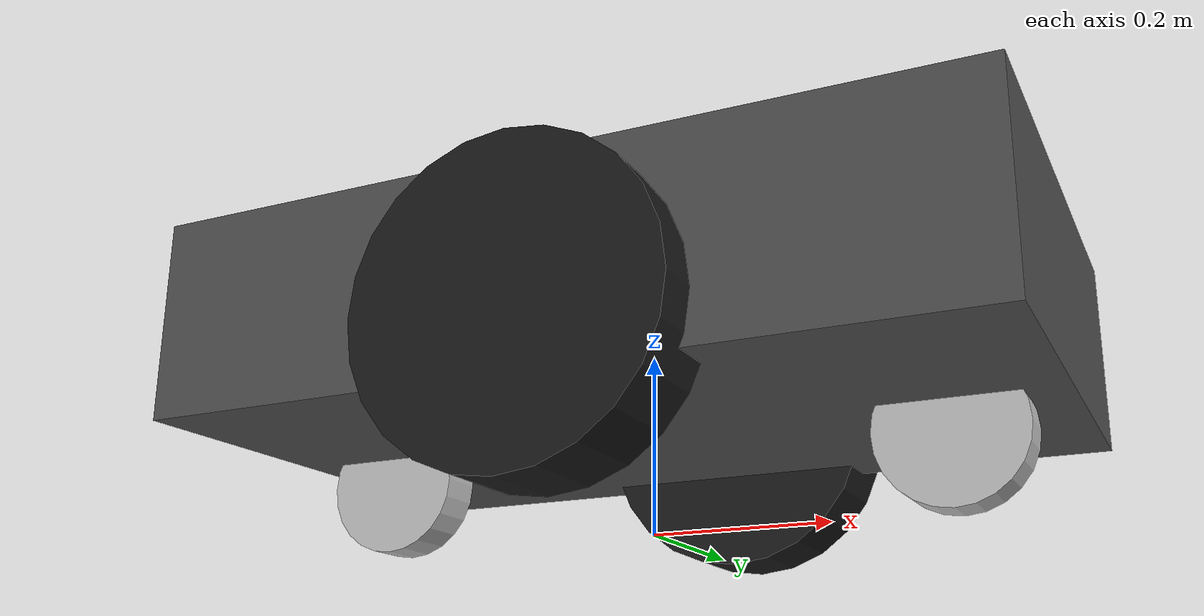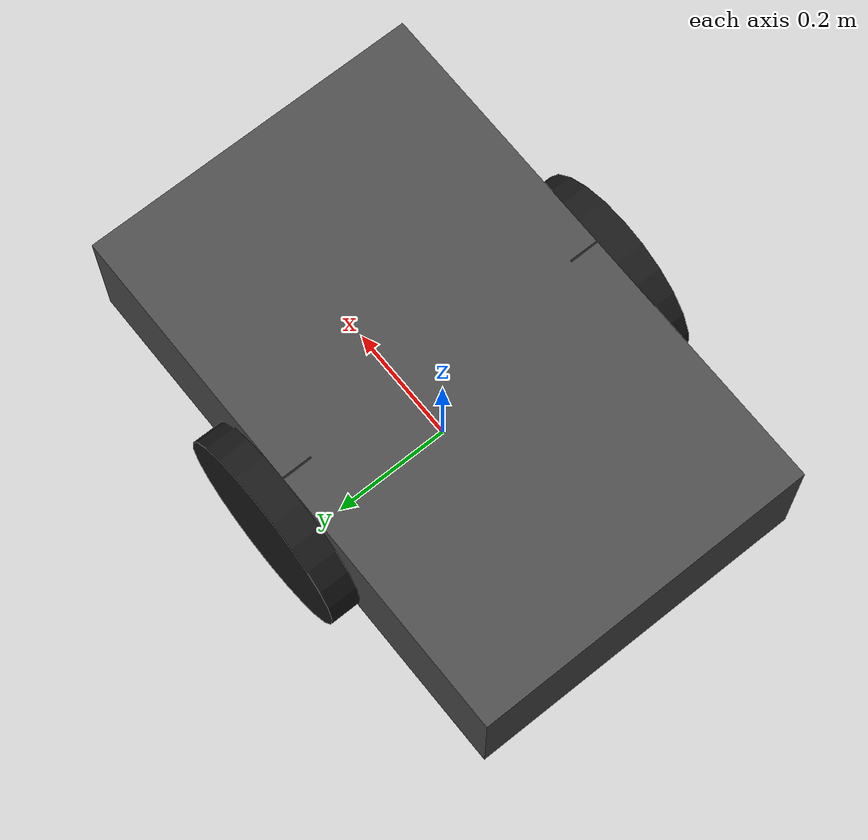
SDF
<?xml version="1.0"?>
<sdf version="1.9">
  <model name="X1_Tuned">
    <static>false</static>
    <self_collide>false</self_collide>
    <allow_auto_disable>false</allow_auto_disable>

    <link name="base_link">
      <pose>0 0 0.22 0 0 0</pose>
      <inertial>
        <mass>32.0</mass>
        <inertia>
          <ixx>1.10</ixx>
          <iyy>2.05</iyy>
          <izz>2.35</izz>
          <ixy>0.0</ixy>
          <ixz>0.0</ixz>
          <iyz>0.0</iyz>
        </inertia>
      </inertial>

      <collision name="base_collision">
        <pose>0 0 0 0 0 0</pose>
        <geometry>
          <box>
            <size>0.90 0.57 0.22</size>
          </box>
        </geometry>
      </collision>

      <visual name="base_visual">
        <pose>0 0 0 0 0 0</pose>
        <geometry>
          <box>
            <size>0.90 0.57 0.22</size>
          </box>
        </geometry>
        <material>
          <ambient>0.2 0.2 0.2 1</ambient>
          <diffuse>0.3 0.3 0.3 1</diffuse>
        </material>
      </visual>

      <sensor name="imu_sensor" type="imu">
        <always_on>1</always_on>
        <update_rate>100</update_rate>
        <frame_id>imu_link</frame_id>
      </sensor>

      <sensor name="gpu_lidar" type="gpu_lidar">
        <pose>0.35 0 0.18 0 0 0</pose>
        <always_on>1</always_on>
        <update_rate>20</update_rate>
        <frame_id>lidar_link</frame_id>
        <ray>
          <scan>
            <horizontal>
              <samples>720</samples>
              <resolution>1</resolution>
              <min_angle>-1.57</min_angle>
              <max_angle>1.57</max_angle>
            </horizontal>
            <vertical>
              <samples>1</samples>
              <resolution>1</resolution>
              <min_angle>0</min_angle>
              <max_angle>0</max_angle>
            </vertical>
          </scan>
          <range>
            <min>0.08</min>
            <max>15.0</max>
            <resolution>0.01</resolution>
          </range>
          <noise>
            <type>gaussian</type>
            <mean>0.0</mean>
            <stddev>0.01</stddev>
          </noise>
        </ray>
      </sensor>

      <sensor name="gpu_lidar_rear" type="gpu_lidar">
        <pose>-0.35 0 0.18 0 0 3.14159</pose>
        <always_on>1</always_on>
        <update_rate>20</update_rate>
        <frame_id>lidar_rear_link</frame_id>
        <ray>
          <scan>
            <horizontal>
              <samples>720</samples>
              <resolution>1</resolution>
              <min_angle>-1.57</min_angle>
              <max_angle>1.57</max_angle>
            </horizontal>
            <vertical>
              <samples>1</samples>
              <resolution>1</resolution>
              <min_angle>0</min_angle>
              <max_angle>0</max_angle>
            </vertical>
          </scan>
          <range>
            <min>0.08</min>
            <max>15.0</max>
            <resolution>0.01</resolution>
          </range>
          <noise>
            <type>gaussian</type>
            <mean>0.0</mean>
            <stddev>0.01</stddev>
          </noise>
        </ray>
      </sensor>
    </link>

    <link name="left_wheel">
      <pose>0 0.2854 0.1651 0 0 0</pose>
      <inertial>
        <mass>2.5</mass>
        <inertia>
          <ixx>0.024</ixx>
          <iyy>0.044</iyy>
          <izz>0.024</izz>
          <ixy>0.0</ixy>
          <ixz>0.0</ixz>
          <iyz>0.0</iyz>
        </inertia>
      </inertial>
      <collision name="left_wheel_collision">
        <pose>0 0 0 -1.57079632679 0 0</pose>
        <geometry>
          <cylinder>
            <radius>0.1651</radius>
            <length>0.10</length>
          </cylinder>
        </geometry>
        <surface>
          <friction>
            <ode>
              <mu>1.2</mu>
              <mu2>1.2</mu2>
              <slip1>0.0</slip1>
              <slip2>0.0</slip2>
              <fdir1>0 0 1</fdir1>
            </ode>
          </friction>
        </surface>
      </collision>
      <visual name="left_wheel_visual">
        <pose>0 0 0 -1.57079632679 0 0</pose>
        <geometry>
          <cylinder>
            <radius>0.1651</radius>
            <length>0.10</length>
          </cylinder>
        </geometry>
        <material>
          <ambient>0.05 0.05 0.05 1</ambient>
          <diffuse>0.1 0.1 0.1 1</diffuse>
        </material>
      </visual>
    </link>

    <joint name="left_wheel_joint" type="revolute">
      <parent>base_link</parent>
      <child>left_wheel</child>
      <axis>
        <xyz>0 1 0</xyz>
        <limit>
          <lower>-1.79769e+308</lower>
          <upper>1.79769e+308</upper>
        </limit>
      </axis>
    </joint>

    <link name="right_wheel">
      <pose>0 -0.2854 0.1651 0 0 0</pose>
      <inertial>
        <mass>2.5</mass>
        <inertia>
          <ixx>0.024</ixx>
          <iyy>0.044</iyy>
          <izz>0.024</izz>
          <ixy>0.0</ixy>
          <ixz>0.0</ixz>
          <iyz>0.0</iyz>
        </inertia>
      </inertial>
      <collision name="right_wheel_collision">
        <pose>0 0 0 -1.57079632679 0 0</pose>
        <geometry>
          <cylinder>
            <radius>0.1651</radius>
            <length>0.10</length>
          </cylinder>
        </geometry>
        <surface>
          <friction>
            <ode>
              <mu>1.2</mu>
              <mu2>1.2</mu2>
              <slip1>0.0</slip1>
              <slip2>0.0</slip2>
              <fdir1>0 0 1</fdir1>
            </ode>
          </friction>
        </surface>
      </collision>
      <visual name="right_wheel_visual">
        <pose>0 0 0 -1.57079632679 0 0</pose>
        <geometry>
          <cylinder>
            <radius>0.1651</radius>
            <length>0.10</length>
          </cylinder>
        </geometry>
        <material>
          <ambient>0.05 0.05 0.05 1</ambient>
          <diffuse>0.1 0.1 0.1 1</diffuse>
        </material>
      </visual>
    </link>

    <joint name="right_wheel_joint" type="revolute">
      <parent>base_link</parent>
      <child>right_wheel</child>
      <axis>
        <xyz>0 1 0</xyz>
        <limit>
          <lower>-1.79769e+308</lower>
          <upper>1.79769e+308</upper>
        </limit>
      </axis>
    </joint>

    <link name="front_support_wheel">
      <pose>0.33 0 0.08 0 0 0</pose>
      <inertial>
        <mass>0.6</mass>
        <inertia>
          <ixx>0.001</ixx>
          <iyy>0.001</iyy>
          <izz>0.001</izz>
          <ixy>0.0</ixy>
          <ixz>0.0</ixz>
          <iyz>0.0</iyz>
        </inertia>
      </inertial>
      <collision name="front_support_collision">
        <pose>0 0 0 -1.57079632679 0 0</pose>
        <geometry>
          <cylinder>
            <radius>0.08</radius>
            <length>0.05</length>
          </cylinder>
        </geometry>
        <surface>
          <friction>
            <ode>
              <mu>0.7</mu>
              <mu2>0.7</mu2>
              <slip1>0.03</slip1>
              <slip2>0.03</slip2>
            </ode>
          </friction>
        </surface>
      </collision>
      <visual name="front_support_visual">
        <pose>0 0 0 -1.57079632679 0 0</pose>
        <geometry>
          <cylinder>
            <radius>0.08</radius>
            <length>0.05</length>
          </cylinder>
        </geometry>
      </visual>
    </link>

    <joint name="front_support_joint" type="revolute">
      <parent>base_link</parent>
      <child>front_support_wheel</child>
      <axis>
        <xyz>0 1 0</xyz>
        <limit>
          <lower>-1.79769e+308</lower>
          <upper>1.79769e+308</upper>
        </limit>
      </axis>
    </joint>

    <link name="rear_support_wheel">
      <pose>-0.33 0 0.08 0 0 0</pose>
      <inertial>
        <mass>0.6</mass>
        <inertia>
          <ixx>0.001</ixx>
          <iyy>0.001</iyy>
          <izz>0.001</izz>
          <ixy>0.0</ixy>
          <ixz>0.0</ixz>
          <iyz>0.0</iyz>
        </inertia>
      </inertial>
      <collision name="rear_support_collision">
        <pose>0 0 0 -1.57079632679 0 0</pose>
        <geometry>
          <cylinder>
            <radius>0.08</radius>
            <length>0.05</length>
          </cylinder>
        </geometry>
        <surface>
          <friction>
            <ode>
              <mu>0.7</mu>
              <mu2>0.7</mu2>
              <slip1>0.03</slip1>
              <slip2>0.03</slip2>
            </ode>
          </friction>
        </surface>
      </collision>
      <visual name="rear_support_visual">
        <pose>0 0 0 -1.57079632679 0 0</pose>
        <geometry>
          <cylinder>
            <radius>0.08</radius>
            <length>0.05</length>
          </cylinder>
        </geometry>
      </visual>
    </link>

    <joint name="rear_support_joint" type="revolute">
      <parent>base_link</parent>
      <child>rear_support_wheel</child>
      <axis>
        <xyz>0 1 0</xyz>
        <limit>
          <lower>-1.79769e+308</lower>
          <upper>1.79769e+308</upper>
        </limit>
      </axis>
    </joint>

    <plugin filename="gz-sim-diff-drive-system" name="gz::sim::systems::DiffDrive">
      <left_joint>left_wheel_joint</left_joint>
      <right_joint>right_wheel_joint</right_joint>
      <wheel_separation>0.5708</wheel_separation>
      <wheel_radius>0.1651</wheel_radius>
      <topic>cmd_vel</topic>
      <odom_topic>odometry</odom_topic>
      <frame_id>odom</frame_id>
      <child_frame_id>base_link</child_frame_id>
      <max_linear_acceleration>1.2</max_linear_acceleration>
      <max_angular_acceleration>2.0</max_angular_acceleration>
      <min_linear_acceleration>-1.2</min_linear_acceleration>
      <min_angular_acceleration>-2.0</min_angular_acceleration>
    </plugin>
  </model>
</sdf>
